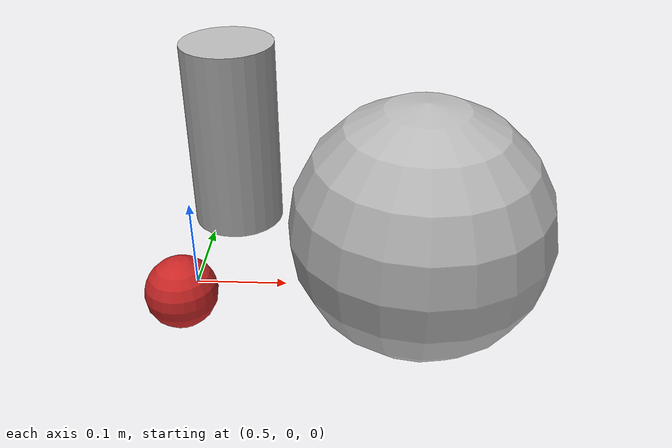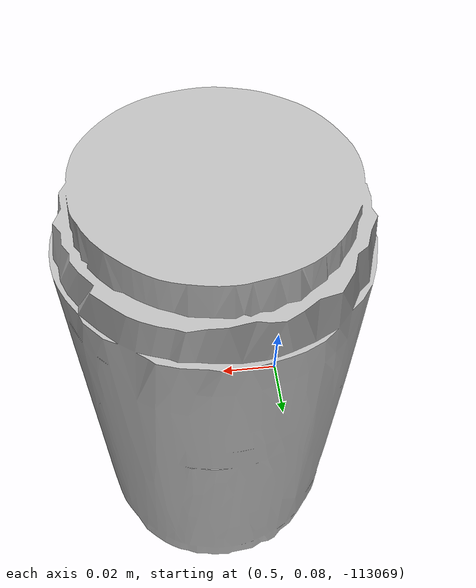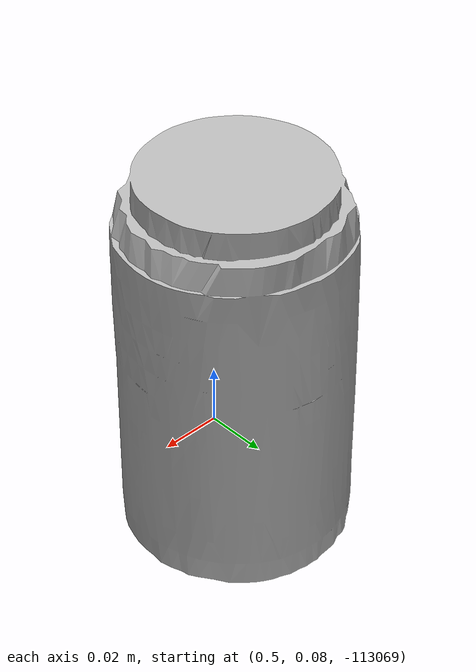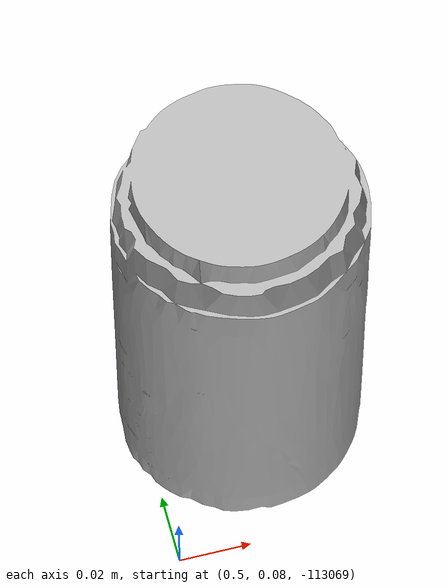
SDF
<sdf version="1.6">
 <world name="default">
  <light name="sun" type="directional">
   <pose>0 0 10 0 -0 0</pose>
   <diffuse>0.8 0.8 0.8 1</diffuse>
   <specular>0.2 0.2 0.2 1</specular>
   <attenuation>
    <range>1000</range>
    <constant>0.9</constant>
    <linear>0.01</linear>
    <quadratic>0.001</quadratic>
   </attenuation>
   <direction>-0.5 0.1 -0.9</direction>
  </light>
  <model name="ground_plane">
   <static>1</static>
   <link name="link">
    <collision name="collision">
     <geometry><plane><normal>0 0 1</normal><size>100 100</size></plane></geometry>
     <surface>
      <contact><collide_bitmask>65535</collide_bitmask></contact>
      <friction><ode><mu>100</mu><mu2>50</mu2></ode></friction>
     </surface>
    </collision>
    <visual name="visual">
     <cast_shadows>0</cast_shadows>
     <geometry><plane><normal>0 0 1</normal><size>100 100</size></plane></geometry>
     <material>
      <script><uri>file://media/materials/scripts/gazebo.material</uri><name>Gazebo/Grey</name></script>
     </material>
    </visual>
   </link>
  </model>
  <gravity>0 0 -9.8</gravity>
  <magnetic_field>6e-06 2.3e-05 -4.2e-05</magnetic_field>
  <atmosphere type="adiabatic"/>
  <physics name="default_physics" default="0" type="ode">
   <max_step_size>0.001</max_step_size>
   <real_time_factor>1</real_time_factor>
   <real_time_update_rate>1000</real_time_update_rate>
  </physics>
  <scene><ambient>0.4 0.4 0.4 1</ambient><background>0.7 0.7 0.7 1</background><shadows>1</shadows></scene>
  <audio><device>default</device></audio>
  <spherical_coordinates>
   <surface_model>EARTH_WGS84</surface_model>
   <latitude_deg>0</latitude_deg>
   <longitude_deg>0</longitude_deg>
   <elevation>0</elevation>
   <heading_deg>0</heading_deg>
  </spherical_coordinates>
  <model name="coke_can">
   <link name="link">
    <inertial>
     <pose>0 0 0.06 0 -0 0</pose>
     <mass>0.39</mass>
     <inertia>
      <ixx>0.00055575</ixx>
      <ixy>0</ixy>
      <ixz>0</ixz>
      <iyy>0.00055575</iyy>
      <iyz>0</iyz>
      <izz>0.0001755</izz>
     </inertia>
    </inertial>
    <collision name="collision">
     <pose>0.003937 0.004724 -0.18 0 -0 0</pose>
     <geometry><mesh><uri>model://coke_can/meshes/coke_can.dae</uri></mesh></geometry>
     <surface>
      <friction><ode><mu>1</mu><mu2>1</mu2></ode></friction>
      <contact><ode><kp>1e+07</kp><kd>1</kd><min_depth>0.001</min_depth><max_vel>0.1</max_vel></ode></contact>
     </surface>
    </collision>
    <visual name="visual">
     <pose>0.003937 0.004724 -0.18 0 -0 0</pose>
     <geometry><mesh><uri>model://coke_can/meshes/coke_can.dae</uri></mesh></geometry>
    </visual>
   </link>
   <pose>0.527482 0.119326 -113069 0 -0 0</pose>
  </model>
  <model name="beer">
   <link name="link">
    <pose>0 0 0.115 0 -0 0</pose>
    <inertial>
     <mass>0.39</mass>
     <inertia><ixx>0.00058</ixx><ixy>0</ixy><ixz>0</ixz><iyy>0.00058</iyy><iyz>0</iyz><izz>0.00019</izz></inertia>
    </inertial>
    <collision name="collision">
     <geometry><cylinder><radius>0.055</radius><length>0.23</length></cylinder></geometry>
    </collision>
    <visual name="visual">
     <geometry><cylinder><radius>0.055</radius><length>0.23</length></cylinder></geometry>
     <material>
      <script>
       <uri>model://beer/materials/scripts</uri>
       <uri>model://beer/materials/textures</uri>
       <name>Beer/Diffuse</name>
      </script>
     </material>
    </visual>
   </link>
   <pose>0.524027 0.144417 -2e-06 1e-06 -0 -5e-06</pose>
  </model>
  <model name="cricket_ball">
   <link name="link">
    <pose>0 0 0.0375 0 -0 0</pose>
    <inertial>
     <mass>0.1467</mass>
     <inertia>
      <ixx>8.25187e-05</ixx>
      <ixy>0</ixy>
      <ixz>0</ixz>
      <iyy>8.25187e-05</iyy>
      <iyz>0</iyz>
      <izz>8.25187e-05</izz>
     </inertia>
    </inertial>
    <collision name="collision">
     <geometry><sphere><radius>0.0375</radius></sphere></geometry>
     <surface>
      <contact>
       <poissons_ratio>0.347</poissons_ratio>
       <elastic_modulus>8.8e+09</elastic_modulus>
       <ode><kp>100000</kp><kd>100</kd><max_vel>100</max_vel><min_depth>0.001</min_depth></ode>
      </contact>
      <friction>
       <torsional>
        <coefficient>1</coefficient>
        <use_patch_radius>0</use_patch_radius>
        <surface_radius>0.01</surface_radius>
       </torsional>
      </friction>
     </surface>
    </collision>
    <visual name="visual">
     <geometry><sphere><radius>0.0375</radius></sphere></geometry>
     <material>
      <script><uri>file://media/materials/scripts/gazebo.material</uri><name>Gazebo/Red</name></script>
     </material>
    </visual>
    <velocity_decay><linear>0</linear><angular>0.005</angular></velocity_decay>
   </link>
   <pose>0.5007 -0.065179 -0.001014 0 -0 0</pose>
  </model>
  <model name="frc2016_ball">
   <pose>0.741593 -0.07074 0.127 0 -0 0</pose>
   <link name="link">
    <inertial>
     <mass>0.213</mass>
     <inertia>
      <ixx>0.00322667</ixx>
      <ixy>0</ixy>
      <ixz>0</ixz>
      <iyy>0.00322667</iyy>
      <iyz>0</iyz>
      <izz>0.00322667</izz>
     </inertia>
    </inertial>
    <visual name="visual"><geometry><sphere><radius>0.127</radius></sphere></geometry></visual>
    <collision name="collision">
     <geometry><sphere><radius>0.127</radius></sphere></geometry>
     <surface>
      <bounce><restitution_coefficient>0.15937</restitution_coefficient><threshold>0</threshold></bounce>
      <contact><ode><max_vel>100</max_vel><min_depth>0.001</min_depth></ode></contact>
     </surface>
    </collision>
   </link>
  </model>
 </world>
</sdf>
